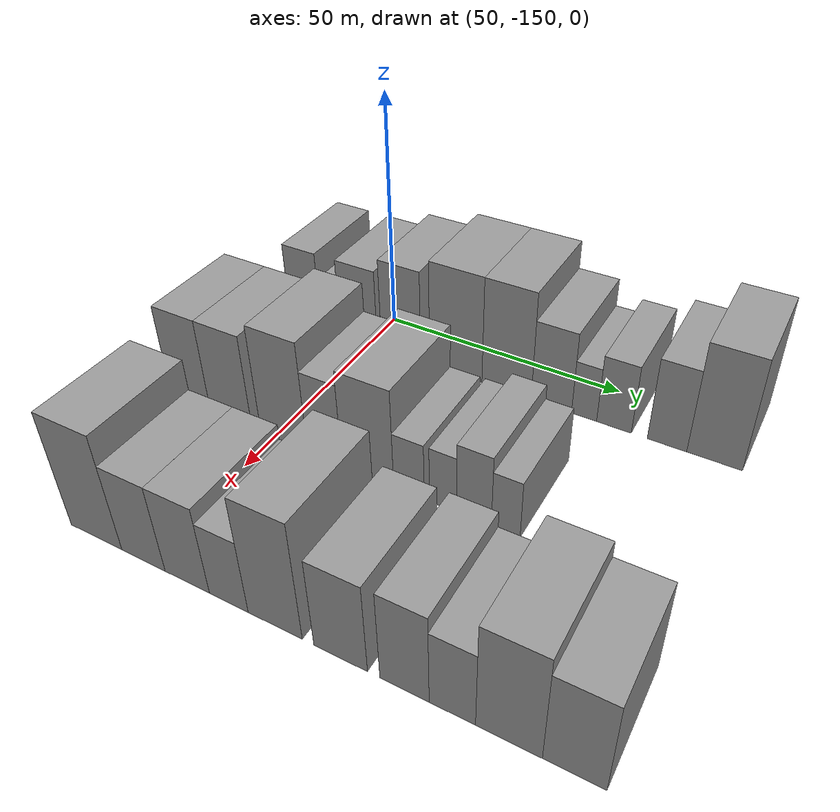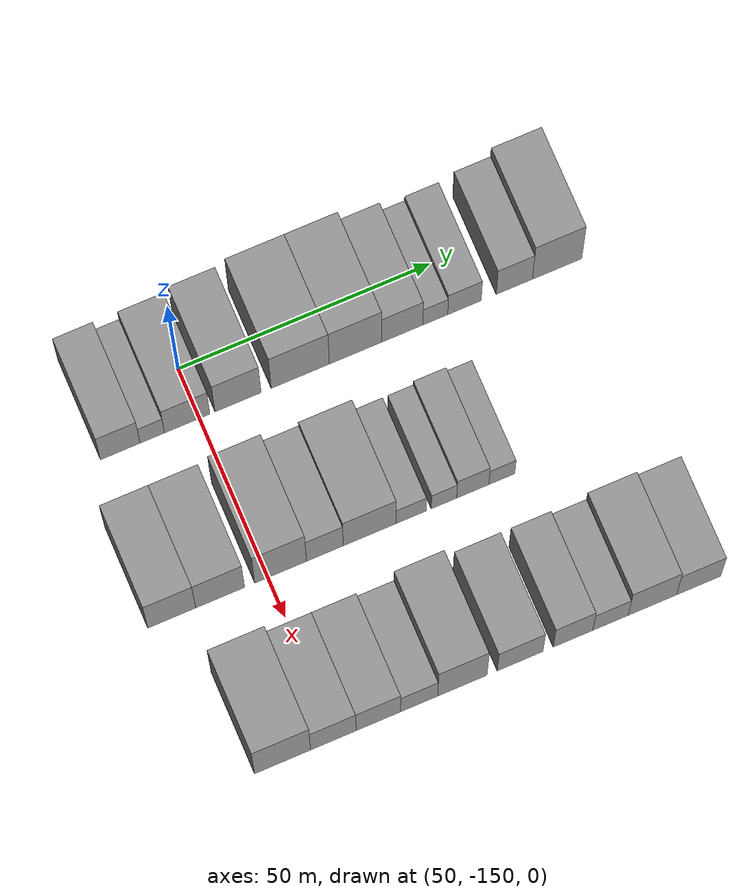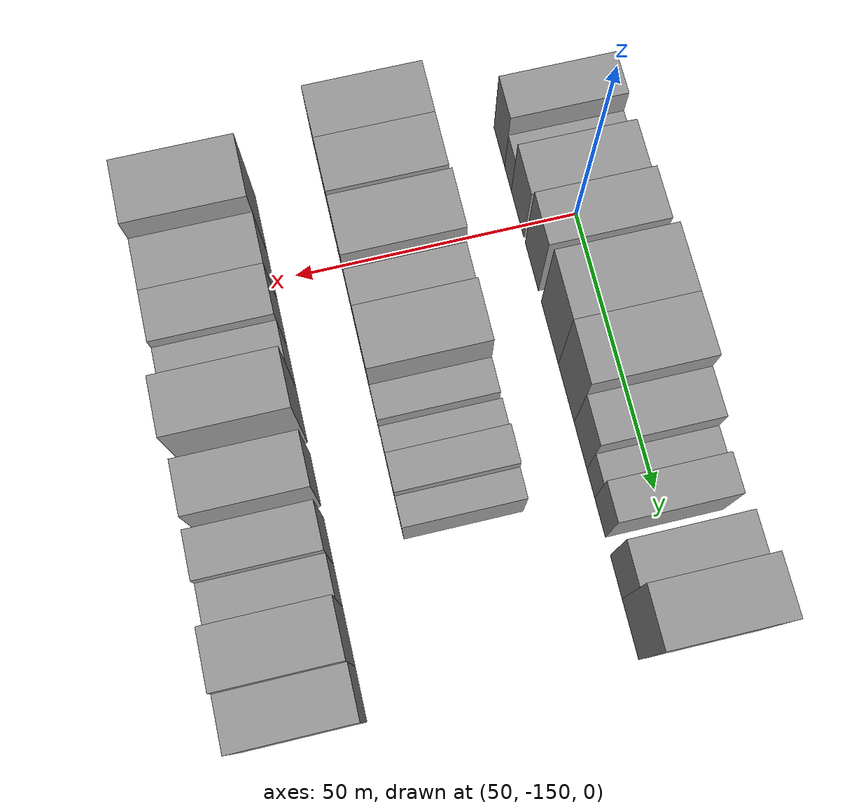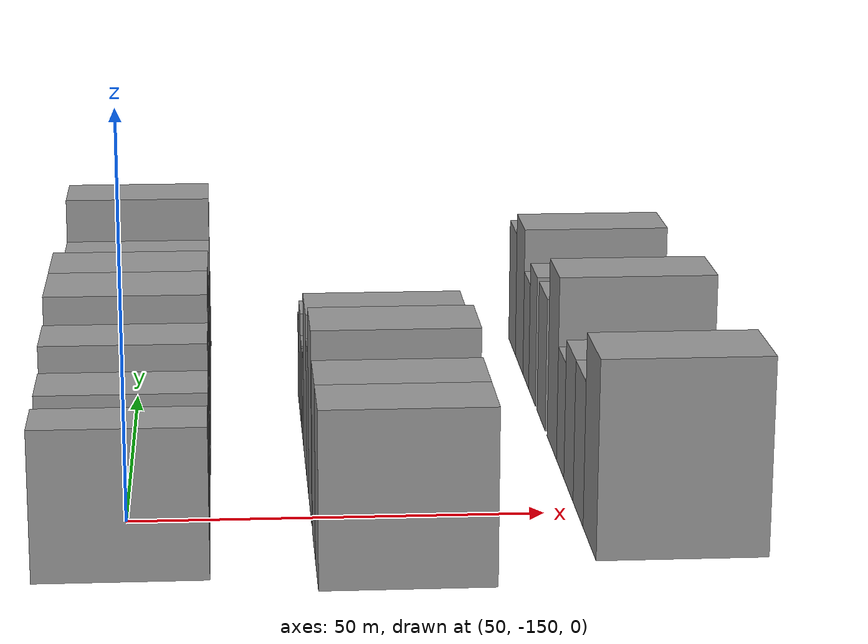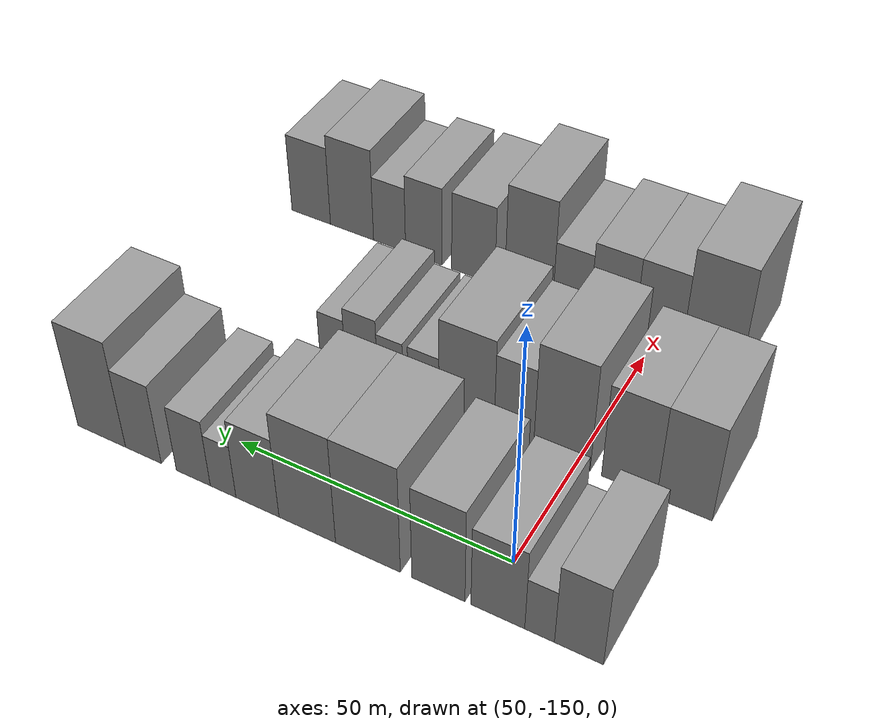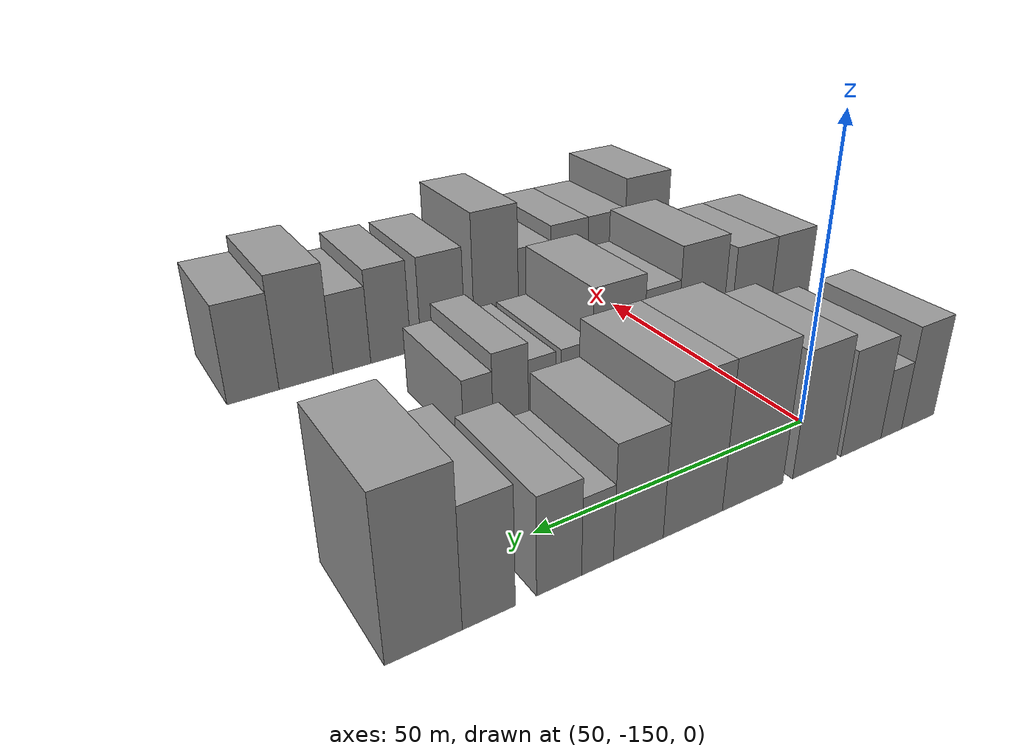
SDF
<sdf version="1.6">
 <world name="default">
  <model name="building_21">
   <static>1</static>
   <pose>50.0000 -165.5747 0 0.000000 0.000000 0.000000</pose>
   <link name="link">
    <pose>0 0 9.00 0 0 0</pose>
    <collision name="collision"><geometry><box><size>20.0000 7.7982 18.0000</size></box></geometry></collision>
    <visual name="visual">
     <cast_shadows>0</cast_shadows>
     <geometry><box><size>20.0000 7.7982 18.0000</size></box></geometry>
     <material>
      <script>
       <uri>model://grey_wall/materials/scripts</uri>
       <uri>model://grey_wall/materials/textures</uri>
       <name>vrc/grey_wall</name>
      </script>
     </material>
    </visual>
   </link>
  </model>
  <model name="building_22">
   <static>1</static>
   <pose>50.0000 -159.2632 0 0.000000 0.000000 0.000000</pose>
   <link name="link">
    <pose>0 0 6.00 0 0 0</pose>
    <collision name="collision"><geometry><box><size>20.0000 4.8246 12.0000</size></box></geometry></collision>
    <visual name="visual">
     <cast_shadows>0</cast_shadows>
     <geometry><box><size>20.0000 4.8246 12.0000</size></box></geometry>
     <material>
      <script>
       <uri>model://grey_wall/materials/scripts</uri>
       <uri>model://grey_wall/materials/textures</uri>
       <name>vrc/grey_wall</name>
      </script>
     </material>
    </visual>
   </link>
  </model>
  <model name="building_23">
   <static>1</static>
   <pose>50.0000 -152.3825 0 0.000000 0.000000 0.000000</pose>
   <link name="link">
    <pose>0 0 9.00 0 0 0</pose>
    <collision name="collision"><geometry><box><size>20.0000 8.9368 18.0000</size></box></geometry></collision>
    <visual name="visual">
     <cast_shadows>0</cast_shadows>
     <geometry><box><size>20.0000 8.9368 18.0000</size></box></geometry>
     <material>
      <script>
       <uri>model://grey_wall/materials/scripts</uri>
       <uri>model://grey_wall/materials/textures</uri>
       <name>vrc/grey_wall</name>
      </script>
     </material>
    </visual>
   </link>
  </model>
  <model name="building_24">
   <static>1</static>
   <pose>50.0000 -142.3646 0 0.000000 0.000000 0.000000</pose>
   <link name="link">
    <pose>0 0 10.50 0 0 0</pose>
    <collision name="collision"><geometry><box><size>20.0000 9.0991 21.0000</size></box></geometry></collision>
    <visual name="visual">
     <cast_shadows>0</cast_shadows>
     <geometry><box><size>20.0000 9.0991 21.0000</size></box></geometry>
     <material>
      <script>
       <uri>model://grey_wall/materials/scripts</uri>
       <uri>model://grey_wall/materials/textures</uri>
       <name>vrc/grey_wall</name>
      </script>
     </material>
    </visual>
   </link>
  </model>
  <model name="building_25">
   <static>1</static>
   <pose>50.0000 -130.0596 0 0.000000 0.000000 0.000000</pose>
   <link name="link">
    <pose>0 0 12.00 0 0 0</pose>
    <collision name="collision"><geometry><box><size>20.0000 11.5109 24.0000</size></box></geometry></collision>
    <visual name="visual">
     <cast_shadows>0</cast_shadows>
     <geometry><box><size>20.0000 11.5109 24.0000</size></box></geometry>
     <material>
      <script>
       <uri>model://grey_wall/materials/scripts</uri>
       <uri>model://grey_wall/materials/textures</uri>
       <name>vrc/grey_wall</name>
      </script>
     </material>
    </visual>
   </link>
  </model>
  <model name="building_26">
   <static>1</static>
   <pose>50.0000 -119.1078 0 0.000000 0.000000 0.000000</pose>
   <link name="link">
    <pose>0 0 12.00 0 0 0</pose>
    <collision name="collision"><geometry><box><size>20.0000 10.3928 24.0000</size></box></geometry></collision>
    <visual name="visual">
     <cast_shadows>0</cast_shadows>
     <geometry><box><size>20.0000 10.3928 24.0000</size></box></geometry>
     <material>
      <script>
       <uri>model://grey_wall/materials/scripts</uri>
       <uri>model://grey_wall/materials/textures</uri>
       <name>vrc/grey_wall</name>
      </script>
     </material>
    </visual>
   </link>
  </model>
  <model name="building_27">
   <static>1</static>
   <pose>50.0000 -109.8348 0 0.000000 0.000000 0.000000</pose>
   <link name="link">
    <pose>0 0 9.00 0 0 0</pose>
    <collision name="collision"><geometry><box><size>20.0000 8.1531 18.0000</size></box></geometry></collision>
    <visual name="visual">
     <cast_shadows>0</cast_shadows>
     <geometry><box><size>20.0000 8.1531 18.0000</size></box></geometry>
     <material>
      <script>
       <uri>model://grey_wall/materials/scripts</uri>
       <uri>model://grey_wall/materials/textures</uri>
       <name>vrc/grey_wall</name>
      </script>
     </material>
    </visual>
   </link>
  </model>
  <model name="building_28">
   <static>1</static>
   <pose>50.0000 -103.2867 0 0.000000 0.000000 0.000000</pose>
   <link name="link">
    <pose>0 0 6.00 0 0 0</pose>
    <collision name="collision"><geometry><box><size>20.0000 4.9432 12.0000</size></box></geometry></collision>
    <visual name="visual">
     <cast_shadows>0</cast_shadows>
     <geometry><box><size>20.0000 4.9432 12.0000</size></box></geometry>
     <material>
      <script>
       <uri>model://grey_wall/materials/scripts</uri>
       <uri>model://grey_wall/materials/textures</uri>
       <name>vrc/grey_wall</name>
      </script>
     </material>
    </visual>
   </link>
  </model>
  <model name="building_29">
   <static>1</static>
   <pose>50.0000 -97.4903 0 0.000000 0.000000 0.000000</pose>
   <link name="link">
    <pose>0 0 7.50 0 0 0</pose>
    <collision name="collision"><geometry><box><size>20.0000 6.6497 15.0000</size></box></geometry></collision>
    <visual name="visual">
     <cast_shadows>0</cast_shadows>
     <geometry><box><size>20.0000 6.6497 15.0000</size></box></geometry>
     <material>
      <script>
       <uri>model://grey_wall/materials/scripts</uri>
       <uri>model://grey_wall/materials/textures</uri>
       <name>vrc/grey_wall</name>
      </script>
     </material>
    </visual>
   </link>
  </model>
  <model name="building_30">
   <static>1</static>
   <pose>50.0000 -87.5600 0 0.000000 0.000000 0.000000</pose>
   <link name="link">
    <pose>0 0 9.00 0 0 0</pose>
    <collision name="collision"><geometry><box><size>20.0000 7.2110 18.0000</size></box></geometry></collision>
    <visual name="visual">
     <cast_shadows>0</cast_shadows>
     <geometry><box><size>20.0000 7.2110 18.0000</size></box></geometry>
     <material>
      <script>
       <uri>model://grey_wall/materials/scripts</uri>
       <uri>model://grey_wall/materials/textures</uri>
       <name>vrc/grey_wall</name>
      </script>
     </material>
    </visual>
   </link>
  </model>
  <model name="building_31">
   <static>1</static>
   <pose>50.0000 -79.0371 0 0.000000 0.000000 0.000000</pose>
   <link name="link">
    <pose>0 0 12.00 0 0 0</pose>
    <collision name="collision"><geometry><box><size>20.0000 9.8348 24.0000</size></box></geometry></collision>
    <visual name="visual">
     <cast_shadows>0</cast_shadows>
     <geometry><box><size>20.0000 9.8348 24.0000</size></box></geometry>
     <material>
      <script>
       <uri>model://grey_wall/materials/scripts</uri>
       <uri>model://grey_wall/materials/textures</uri>
       <name>vrc/grey_wall</name>
      </script>
     </material>
    </visual>
   </link>
  </model>
  <model name="building_100">
   <static>1</static>
   <pose>82.0000 -168.8416 0 0.000000 0.000000 0.000000</pose>
   <link name="link">
    <pose>0 0 10.50 0 0 0</pose>
    <collision name="collision"><geometry><box><size>20.0000 9.3825 21.0000</size></box></geometry></collision>
    <visual name="visual">
     <cast_shadows>0</cast_shadows>
     <geometry><box><size>20.0000 9.3825 21.0000</size></box></geometry>
     <material>
      <script>
       <uri>model://grey_wall/materials/scripts</uri>
       <uri>model://grey_wall/materials/textures</uri>
       <name>vrc/grey_wall</name>
      </script>
     </material>
    </visual>
   </link>
  </model>
  <model name="building_101">
   <static>1</static>
   <pose>82.0000 -159.3698 0 0.000000 0.000000 0.000000</pose>
   <link name="link">
    <pose>0 0 10.50 0 0 0</pose>
    <collision name="collision"><geometry><box><size>20.0000 9.5611 21.0000</size></box></geometry></collision>
    <visual name="visual">
     <cast_shadows>0</cast_shadows>
     <geometry><box><size>20.0000 9.5611 21.0000</size></box></geometry>
     <material>
      <script>
       <uri>model://grey_wall/materials/scripts</uri>
       <uri>model://grey_wall/materials/textures</uri>
       <name>vrc/grey_wall</name>
      </script>
     </material>
    </visual>
   </link>
  </model>
  <model name="building_102">
   <static>1</static>
   <pose>82.0000 -147.5073 0 0.000000 0.000000 0.000000</pose>
   <link name="link">
    <pose>0 0 12.00 0 0 0</pose>
    <collision name="collision"><geometry><box><size>20.0000 10.1639 24.0000</size></box></geometry></collision>
    <visual name="visual">
     <cast_shadows>0</cast_shadows>
     <geometry><box><size>20.0000 10.1639 24.0000</size></box></geometry>
     <material>
      <script>
       <uri>model://grey_wall/materials/scripts</uri>
       <uri>model://grey_wall/materials/textures</uri>
       <name>vrc/grey_wall</name>
      </script>
     </material>
    </visual>
   </link>
  </model>
  <model name="building_103">
   <static>1</static>
   <pose>82.0000 -138.7994 0 0.000000 0.000000 0.000000</pose>
   <link name="link">
    <pose>0 0 9.00 0 0 0</pose>
    <collision name="collision"><geometry><box><size>20.0000 7.2520 18.0000</size></box></geometry></collision>
    <visual name="visual">
     <cast_shadows>0</cast_shadows>
     <geometry><box><size>20.0000 7.2520 18.0000</size></box></geometry>
     <material>
      <script>
       <uri>model://grey_wall/materials/scripts</uri>
       <uri>model://grey_wall/materials/textures</uri>
       <name>vrc/grey_wall</name>
      </script>
     </material>
    </visual>
   </link>
  </model>
  <model name="building_104">
   <static>1</static>
   <pose>82.0000 -129.9816 0 0.000000 0.000000 0.000000</pose>
   <link name="link">
    <pose>0 0 10.50 0 0 0</pose>
    <collision name="collision"><geometry><box><size>20.0000 10.3834 21.0000</size></box></geometry></collision>
    <visual name="visual">
     <cast_shadows>0</cast_shadows>
     <geometry><box><size>20.0000 10.3834 21.0000</size></box></geometry>
     <material>
      <script>
       <uri>model://grey_wall/materials/scripts</uri>
       <uri>model://grey_wall/materials/textures</uri>
       <name>vrc/grey_wall</name>
      </script>
     </material>
    </visual>
   </link>
  </model>
  <model name="building_105">
   <static>1</static>
   <pose>82.0000 -121.8273 0 0.000000 0.000000 0.000000</pose>
   <link name="link">
    <pose>0 0 6.00 0 0 0</pose>
    <collision name="collision"><geometry><box><size>20.0000 5.9252 12.0000</size></box></geometry></collision>
    <visual name="visual">
     <cast_shadows>0</cast_shadows>
     <geometry><box><size>20.0000 5.9252 12.0000</size></box></geometry>
     <material>
      <script>
       <uri>model://grey_wall/materials/scripts</uri>
       <uri>model://grey_wall/materials/textures</uri>
       <name>vrc/grey_wall</name>
      </script>
     </material>
    </visual>
   </link>
  </model>
  <model name="building_106">
   <static>1</static>
   <pose>82.0000 -115.3562 0 0.000000 0.000000 0.000000</pose>
   <link name="link">
    <pose>0 0 6.00 0 0 0</pose>
    <collision name="collision"><geometry><box><size>20.0000 5.0170 12.0000</size></box></geometry></collision>
    <visual name="visual">
     <cast_shadows>0</cast_shadows>
     <geometry><box><size>20.0000 5.0170 12.0000</size></box></geometry>
     <material>
      <script>
       <uri>model://grey_wall/materials/scripts</uri>
       <uri>model://grey_wall/materials/textures</uri>
       <name>vrc/grey_wall</name>
      </script>
     </material>
    </visual>
   </link>
  </model>
  <model name="building_107">
   <static>1</static>
   <pose>82.0000 -109.6631 0 0.000000 0.000000 0.000000</pose>
   <link name="link">
    <pose>0 0 7.50 0 0 0</pose>
    <collision name="collision"><geometry><box><size>20.0000 6.3691 15.0000</size></box></geometry></collision>
    <visual name="visual">
     <cast_shadows>0</cast_shadows>
     <geometry><box><size>20.0000 6.3691 15.0000</size></box></geometry>
     <material>
      <script>
       <uri>model://grey_wall/materials/scripts</uri>
       <uri>model://grey_wall/materials/textures</uri>
       <name>vrc/grey_wall</name>
      </script>
     </material>
    </visual>
   </link>
  </model>
  <model name="building_108">
   <static>1</static>
   <pose>82.0000 -103.9284 0 0.000000 0.000000 0.000000</pose>
   <link name="link">
    <pose>0 0 6.00 0 0 0</pose>
    <collision name="collision"><geometry><box><size>20.0000 5.1003 12.0000</size></box></geometry></collision>
    <visual name="visual">
     <cast_shadows>0</cast_shadows>
     <geometry><box><size>20.0000 5.1003 12.0000</size></box></geometry>
     <material>
      <script>
       <uri>model://grey_wall/materials/scripts</uri>
       <uri>model://grey_wall/materials/textures</uri>
       <name>vrc/grey_wall</name>
      </script>
     </material>
    </visual>
   </link>
  </model>
  <model name="building_182">
   <static>1</static>
   <pose>114.0000 -160.6883 0 0.000000 0.000000 0.000000</pose>
   <link name="link">
    <pose>0 0 12.00 0 0 0</pose>
    <collision name="collision"><geometry><box><size>20.0000 10.9297 24.0000</size></box></geometry></collision>
    <visual name="visual">
     <cast_shadows>0</cast_shadows>
     <geometry><box><size>20.0000 10.9297 24.0000</size></box></geometry>
     <material>
      <script>
       <uri>model://grey_wall/materials/scripts</uri>
       <uri>model://grey_wall/materials/textures</uri>
       <name>vrc/grey_wall</name>
      </script>
     </material>
    </visual>
   </link>
  </model>
  <model name="building_183">
   <static>1</static>
   <pose>114.0000 -150.7744 0 0.000000 0.000000 0.000000</pose>
   <link name="link">
    <pose>0 0 9.00 0 0 0</pose>
    <collision name="collision"><geometry><box><size>20.0000 8.8983 18.0000</size></box></geometry></collision>
    <visual name="visual">
     <cast_shadows>0</cast_shadows>
     <geometry><box><size>20.0000 8.8983 18.0000</size></box></geometry>
     <material>
      <script>
       <uri>model://grey_wall/materials/scripts</uri>
       <uri>model://grey_wall/materials/textures</uri>
       <name>vrc/grey_wall</name>
      </script>
     </material>
    </visual>
   </link>
  </model>
  <model name="building_184">
   <static>1</static>
   <pose>114.0000 -141.9886 0 0.000000 0.000000 0.000000</pose>
   <link name="link">
    <pose>0 0 9.00 0 0 0</pose>
    <collision name="collision"><geometry><box><size>20.0000 8.6731 18.0000</size></box></geometry></collision>
    <visual name="visual">
     <cast_shadows>0</cast_shadows>
     <geometry><box><size>20.0000 8.6731 18.0000</size></box></geometry>
     <material>
      <script>
       <uri>model://grey_wall/materials/scripts</uri>
       <uri>model://grey_wall/materials/textures</uri>
       <name>vrc/grey_wall</name>
      </script>
     </material>
    </visual>
   </link>
  </model>
  <model name="building_185">
   <static>1</static>
   <pose>114.0000 -134.0166 0 0.000000 0.000000 0.000000</pose>
   <link name="link">
    <pose>0 0 7.50 0 0 0</pose>
    <collision name="collision"><geometry><box><size>20.0000 7.2708 15.0000</size></box></geometry></collision>
    <visual name="visual">
     <cast_shadows>0</cast_shadows>
     <geometry><box><size>20.0000 7.2708 15.0000</size></box></geometry>
     <material>
      <script>
       <uri>model://grey_wall/materials/scripts</uri>
       <uri>model://grey_wall/materials/textures</uri>
       <name>vrc/grey_wall</name>
      </script>
     </material>
    </visual>
   </link>
  </model>
  <model name="building_186">
   <static>1</static>
   <pose>114.0000 -125.5439 0 0.000000 0.000000 0.000000</pose>
   <link name="link">
    <pose>0 0 12.00 0 0 0</pose>
    <collision name="collision"><geometry><box><size>20.0000 9.6747 24.0000</size></box></geometry></collision>
    <visual name="visual">
     <cast_shadows>0</cast_shadows>
     <geometry><box><size>20.0000 9.6747 24.0000</size></box></geometry>
     <material>
      <script>
       <uri>model://grey_wall/materials/scripts</uri>
       <uri>model://grey_wall/materials/textures</uri>
       <name>vrc/grey_wall</name>
      </script>
     </material>
    </visual>
   </link>
  </model>
  <model name="building_187">
   <static>1</static>
   <pose>114.0000 -114.2100 0 0.000000 0.000000 0.000000</pose>
   <link name="link">
    <pose>0 0 9.00 0 0 0</pose>
    <collision name="collision"><geometry><box><size>20.0000 8.9930 18.0000</size></box></geometry></collision>
    <visual name="visual">
     <cast_shadows>0</cast_shadows>
     <geometry><box><size>20.0000 8.9930 18.0000</size></box></geometry>
     <material>
      <script>
       <uri>model://grey_wall/materials/scripts</uri>
       <uri>model://grey_wall/materials/textures</uri>
       <name>vrc/grey_wall</name>
      </script>
     </material>
    </visual>
   </link>
  </model>
  <model name="building_188">
   <static>1</static>
   <pose>114.0000 -103.8272 0 0.000000 0.000000 0.000000</pose>
   <link name="link">
    <pose>0 0 9.00 0 0 0</pose>
    <collision name="collision"><geometry><box><size>20.0000 7.7726 18.0000</size></box></geometry></collision>
    <visual name="visual">
     <cast_shadows>0</cast_shadows>
     <geometry><box><size>20.0000 7.7726 18.0000</size></box></geometry>
     <material>
      <script>
       <uri>model://grey_wall/materials/scripts</uri>
       <uri>model://grey_wall/materials/textures</uri>
       <name>vrc/grey_wall</name>
      </script>
     </material>
    </visual>
   </link>
  </model>
  <model name="building_189">
   <static>1</static>
   <pose>114.0000 -96.4556 0 0.000000 0.000000 0.000000</pose>
   <link name="link">
    <pose>0 0 7.50 0 0 0</pose>
    <collision name="collision"><geometry><box><size>20.0000 6.9707 15.0000</size></box></geometry></collision>
    <visual name="visual">
     <cast_shadows>0</cast_shadows>
     <geometry><box><size>20.0000 6.9707 15.0000</size></box></geometry>
     <material>
      <script>
       <uri>model://grey_wall/materials/scripts</uri>
       <uri>model://grey_wall/materials/textures</uri>
       <name>vrc/grey_wall</name>
      </script>
     </material>
    </visual>
   </link>
  </model>
  <model name="building_190">
   <static>1</static>
   <pose>114.0000 -88.1891 0 0.000000 0.000000 0.000000</pose>
   <link name="link">
    <pose>0 0 10.50 0 0 0</pose>
    <collision name="collision"><geometry><box><size>20.0000 9.5623 21.0000</size></box></geometry></collision>
    <visual name="visual">
     <cast_shadows>0</cast_shadows>
     <geometry><box><size>20.0000 9.5623 21.0000</size></box></geometry>
     <material>
      <script>
       <uri>model://grey_wall/materials/scripts</uri>
       <uri>model://grey_wall/materials/textures</uri>
       <name>vrc/grey_wall</name>
      </script>
     </material>
    </visual>
   </link>
  </model>
  <model name="building_191">
   <static>1</static>
   <pose>114.0000 -79.0451 0 0.000000 0.000000 0.000000</pose>
   <link name="link">
    <pose>0 0 9.00 0 0 0</pose>
    <collision name="collision"><geometry><box><size>20.0000 8.7258 18.0000</size></box></geometry></collision>
    <visual name="visual">
     <cast_shadows>0</cast_shadows>
     <geometry><box><size>20.0000 8.7258 18.0000</size></box></geometry>
     <material>
      <script>
       <uri>model://grey_wall/materials/scripts</uri>
       <uri>model://grey_wall/materials/textures</uri>
       <name>vrc/grey_wall</name>
      </script>
     </material>
    </visual>
   </link>
  </model>
 </world>
</sdf>
